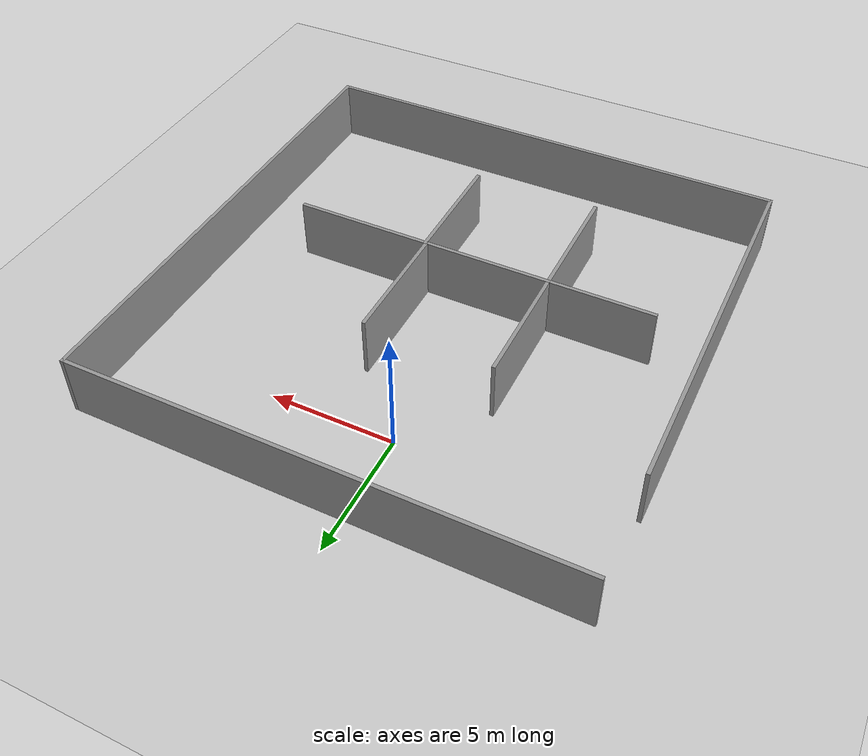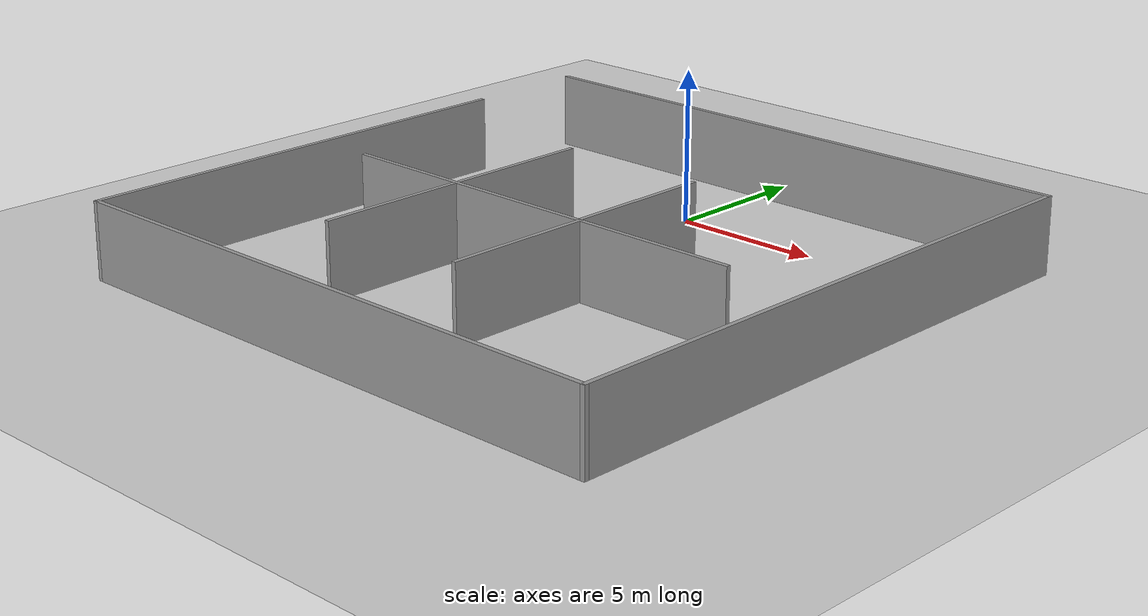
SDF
<sdf version="1.7">
 <world name="default">
  <light name="sun" type="directional">
   <pose>0 0 10 0 -0 0</pose>
   <diffuse>0.8 0.8 0.8 1</diffuse>
   <specular>0.2 0.2 0.2 1</specular>
   <attenuation>
    <range>1000</range>
    <constant>0.9</constant>
    <linear>0.01</linear>
    <quadratic>0.001</quadratic>
   </attenuation>
   <direction>-0.5 0.1 -0.9</direction>
   <spot><inner_angle>0</inner_angle><outer_angle>0</outer_angle><falloff>0</falloff></spot>
  </light>
  <model name="ground_plane">
   <static>1</static>
   <link name="link">
    <collision name="collision">
     <geometry><plane><normal>0 0 1</normal><size>100 100</size></plane></geometry>
     <surface><friction><ode><mu>100</mu><mu2>50</mu2></ode></friction></surface>
    </collision>
    <visual name="visual">
     <cast_shadows>0</cast_shadows>
     <geometry><plane><normal>0 0 1</normal><size>100 100</size></plane></geometry>
     <material>
      <script><uri>file://media/materials/scripts/gazebo.material</uri><name>Gazebo/Grey</name></script>
     </material>
    </visual>
   </link>
  </model>
  <gravity>0 0 -9.8</gravity>
  <magnetic_field>6e-06 2.3e-05 -4.2e-05</magnetic_field>
  <atmosphere type="adiabatic"/>
  <physics type="ode">
   <max_step_size>0.001</max_step_size>
   <real_time_factor>1</real_time_factor>
   <real_time_update_rate>1000</real_time_update_rate>
  </physics>
  <scene><ambient>0.4 0.4 0.4 1</ambient><background>0.7 0.7 0.7 1</background><shadows>1</shadows></scene>
  <audio><device>default</device></audio>
  <spherical_coordinates>
   <surface_model>EARTH_WGS84</surface_model>
   <latitude_deg>0</latitude_deg>
   <longitude_deg>0</longitude_deg>
   <elevation>0</elevation>
   <heading_deg>0</heading_deg>
  </spherical_coordinates>
  <model name="garbage">
   <pose>1.10482 -6.31524 0 0 -0 0</pose>
   <link name="Wall_11">
    <collision name="Wall_11_Collision">
     <geometry><box><size>20 0.15 2.5</size></box></geometry>
     <pose>0 0 1.25 0 -0 0</pose>
    </collision>
    <visual name="Wall_11_Visual">
     <pose>0 0 1.25 0 -0 0</pose>
     <geometry><box><size>20 0.15 2.5</size></box></geometry>
     <material>
      <script><uri>file://media/materials/scripts/gazebo.material</uri><name>Gazebo/Grey</name></script>
      <ambient>1 1 1 1</ambient>
     </material>
     <meta><layer>0</layer></meta>
    </visual>
    <pose>-0.00018 9.92476 0 0 -0 0</pose>
   </link>
   <link name="Wall_12">
    <collision name="Wall_12_Collision">
     <geometry><box><size>20 0.15 2.5</size></box></geometry>
     <pose>0 0 1.25 0 -0 0</pose>
    </collision>
    <visual name="Wall_12_Visual">
     <pose>0 0 1.25 0 -0 0</pose>
     <geometry><box><size>20 0.15 2.5</size></box></geometry>
     <material>
      <script><uri>file://media/materials/scripts/gazebo.material</uri><name>Gazebo/Grey</name></script>
      <ambient>1 1 1 1</ambient>
     </material>
     <meta><layer>0</layer></meta>
    </visual>
    <pose>9.925 -0 0 0 -0 -1.57078</pose>
   </link>
   <link name="Wall_21">
    <collision name="Wall_21_Collision">
     <geometry><box><size>20 0.15 2.5</size></box></geometry>
     <pose>0 0 1.25 0 -0 0</pose>
    </collision>
    <visual name="Wall_21_Visual">
     <pose>0 0 1.25 0 -0 0</pose>
     <geometry><box><size>20 0.15 2.5</size></box></geometry>
     <material>
      <script><uri>file://media/materials/scripts/gazebo.material</uri><name>Gazebo/Grey</name></script>
      <ambient>1 1 1 1</ambient>
     </material>
     <meta><layer>0</layer></meta>
    </visual>
    <pose>0.000178 -9.92476 0 0 -0 3.14159</pose>
   </link>
   <link name="Wall_24">
    <collision name="Wall_24_Collision">
     <geometry><box><size>15.75 0.15 2.5</size></box></geometry>
     <pose>0 0 1.25 0 -0 0</pose>
    </collision>
    <visual name="Wall_24_Visual">
     <pose>0 0 1.25 0 -0 0</pose>
     <geometry><box><size>15.75 0.15 2.5</size></box></geometry>
     <material>
      <script><uri>file://media/materials/scripts/gazebo.material</uri><name>Gazebo/Grey</name></script>
      <ambient>1 1 1 1</ambient>
     </material>
     <meta><layer>0</layer></meta>
    </visual>
    <pose>-9.92482 -2.12476 0 0 -0 1.5708</pose>
   </link>
   <static>1</static>
  </model>
  <model name="garbage_1">
   <pose>0.687223 -6.36609 0 0 -0 0</pose>
   <link name="Wall_48">
    <collision name="Wall_48_Collision">
     <geometry><box><size>15 0.15 2.5</size></box></geometry>
     <pose>0 0 1.25 0 -0 0</pose>
    </collision>
    <visual name="Wall_48_Visual">
     <pose>0 0 1.25 0 -0 0</pose>
     <geometry><box><size>15 0.15 2.5</size></box></geometry>
     <material>
      <script><uri>file://media/materials/scripts/gazebo.material</uri><name>Gazebo/Grey</name></script>
      <ambient>1 1 1 1</ambient>
     </material>
     <meta><layer>0</layer></meta>
    </visual>
    <pose>0 -1.30152 0 0 -0 0</pose>
   </link>
   <link name="Wall_50">
    <collision name="Wall_50_Collision">
     <geometry><box><size>5 0.15 2.5</size></box></geometry>
     <pose>0 0 1.25 0 -0 0</pose>
    </collision>
    <visual name="Wall_50_Visual">
     <pose>0 0 1.25 0 -0 0</pose>
     <geometry><box><size>5 0.15 2.5</size></box></geometry>
     <material>
      <script><uri>file://media/materials/scripts/gazebo.material</uri><name>Gazebo/Grey</name></script>
      <ambient>1 1 1 1</ambient>
     </material>
     <meta><layer>0</layer></meta>
    </visual>
    <pose>-3.23785 1.20501 0 0 -0 -1.5708</pose>
   </link>
   <link name="Wall_52">
    <collision name="Wall_52_Collision">
     <geometry><box><size>5 0.15 2.5</size></box></geometry>
     <pose>0 0 1.25 0 -0 0</pose>
    </collision>
    <visual name="Wall_52_Visual">
     <pose>0 0 1.25 0 -0 0</pose>
     <geometry><box><size>5 0.15 2.5</size></box></geometry>
     <material>
      <script><uri>file://media/materials/scripts/gazebo.material</uri><name>Gazebo/Grey</name></script>
      <ambient>1 1 1 1</ambient>
     </material>
     <meta><layer>0</layer></meta>
    </visual>
    <pose>1.87978 1.25154 0 0 -0 -1.5708</pose>
   </link>
   <link name="Wall_55">
    <collision name="Wall_55_Collision">
     <geometry><box><size>5 0.15 2.5</size></box></geometry>
     <pose>0 0 1.25 0 -0 0</pose>
    </collision>
    <visual name="Wall_55_Visual">
     <pose>0 0 1.25 0 -0 0</pose>
     <geometry><box><size>5 0.15 2.5</size></box></geometry>
     <material>
      <script><uri>file://media/materials/scripts/gazebo.material</uri><name>Gazebo/Grey</name></script>
      <ambient>1 1 1 1</ambient>
     </material>
     <meta><layer>0</layer></meta>
    </visual>
    <pose>-3.23785 -3.86609 0 0 -0 -1.5708</pose>
   </link>
   <link name="Wall_57">
    <collision name="Wall_57_Collision">
     <geometry><box><size>5 0.15 2.5</size></box></geometry>
     <pose>0 0 1.25 0 -0 0</pose>
    </collision>
    <visual name="Wall_57_Visual">
     <pose>0 0 1.25 0 -0 0</pose>
     <geometry><box><size>5 0.15 2.5</size></box></geometry>
     <material>
      <script><uri>file://media/materials/scripts/gazebo.material</uri><name>Gazebo/Grey</name></script>
      <ambient>1 1 1 1</ambient>
     </material>
     <meta><layer>0</layer></meta>
    </visual>
    <pose>1.92631 -3.72652 0 0 -0 -1.5708</pose>
   </link>
   <static>1</static>
  </model>
 </world>
</sdf>
